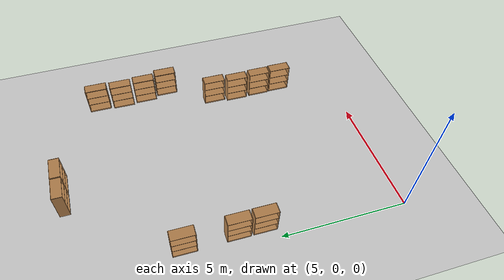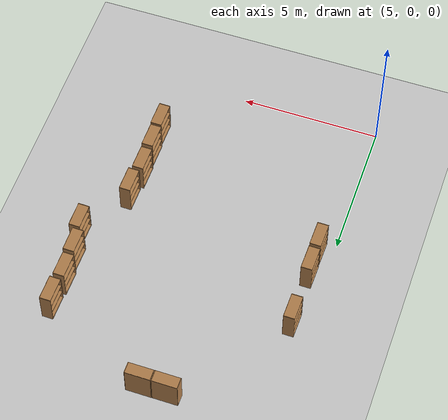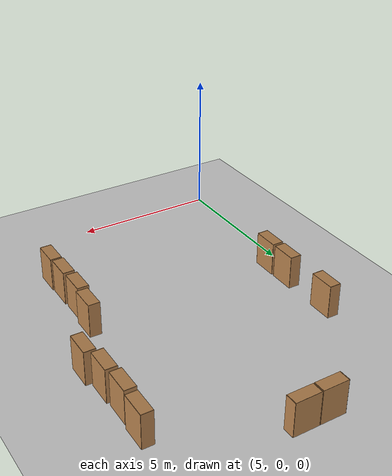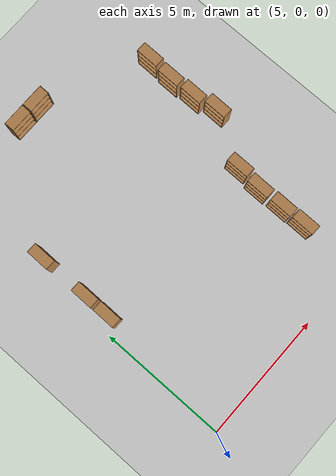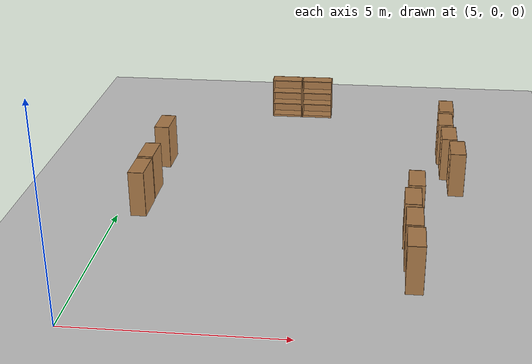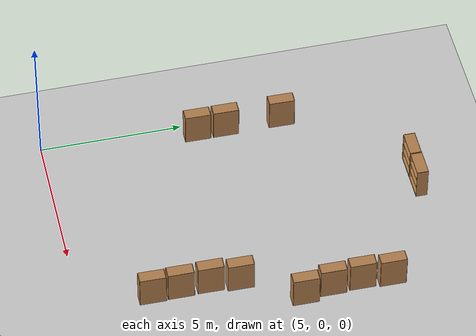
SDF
<sdf version="1.6">
 <world name="default">
  <model name="ground_plane">
   <static>1</static>
   <link name="link">
    <collision name="collision">
     <geometry><plane><normal>0 0 1</normal><size>100 100</size></plane></geometry>
     <surface>
      <contact><collide_bitmask>65535</collide_bitmask></contact>
      <friction><ode><mu>100</mu><mu2>50</mu2></ode></friction>
     </surface>
    </collision>
    <visual name="visual">
     <cast_shadows>0</cast_shadows>
     <geometry><plane><normal>0 0 1</normal><size>100 100</size></plane></geometry>
     <material>
      <script><uri>file://media/materials/scripts/gazebo.material</uri><name>Gazebo/Grey</name></script>
     </material>
    </visual>
   </link>
  </model>
  <model name="30x30env"><static>0</static><pose>32.1206 3.39752 0 0 -0 0</pose></model>
  <model name="bookshelf_clone_clone_clone_0_clone_clone">
   <static>1</static>
   <link name="link">
    <inertial><mass>1</mass></inertial>
    <collision name="back">
     <pose>0 0.005 0.6 0 -0 0</pose>
     <geometry><box><size>0.9 0.01 1.2</size></box></geometry>
    </collision>
    <visual name="visual1">
     <pose>0 0.005 0.6 0 -0 0</pose>
     <geometry><box><size>0.9 0.01 1.2</size></box></geometry>
     <material>
      <script><uri>file://media/materials/scripts/gazebo.material</uri><name>Gazebo/Wood</name></script>
     </material>
    </visual>
    <collision name="left_side">
     <pose>0.45 -0.195 0.6 0 -0 0</pose>
     <geometry><box><size>0.02 0.4 1.2</size></box></geometry>
    </collision>
    <visual name="visual2">
     <pose>0.45 -0.195 0.6 0 -0 0</pose>
     <geometry><box><size>0.02 0.4 1.2</size></box></geometry>
     <material>
      <script><uri>file://media/materials/scripts/gazebo.material</uri><name>Gazebo/Wood</name></script>
     </material>
    </visual>
    <collision name="right_side">
     <pose>-0.45 -0.195 0.6 0 -0 0</pose>
     <geometry><box><size>0.02 0.4 1.2</size></box></geometry>
    </collision>
    <visual name="visual3">
     <pose>-0.45 -0.195 0.6 0 -0 0</pose>
     <geometry><box><size>0.02 0.4 1.2</size></box></geometry>
     <material>
      <script><uri>file://media/materials/scripts/gazebo.material</uri><name>Gazebo/Wood</name></script>
     </material>
    </visual>
    <collision name="bottom">
     <pose>0 -0.195 0.03 0 -0 0</pose>
     <geometry><box><size>0.88 0.4 0.06</size></box></geometry>
    </collision>
    <visual name="visual4">
     <pose>0 -0.195 0.03 0 -0 0</pose>
     <geometry><box><size>0.88 0.4 0.06</size></box></geometry>
     <material>
      <script><uri>file://media/materials/scripts/gazebo.material</uri><name>Gazebo/Wood</name></script>
     </material>
    </visual>
    <collision name="top">
     <pose>0 -0.195 1.19 0 -0 0</pose>
     <geometry><box><size>0.88 0.4 0.02</size></box></geometry>
    </collision>
    <visual name="visual5">
     <pose>0 -0.195 1.19 0 -0 0</pose>
     <geometry><box><size>0.88 0.4 0.02</size></box></geometry>
     <material>
      <script><uri>file://media/materials/scripts/gazebo.material</uri><name>Gazebo/Wood</name></script>
     </material>
    </visual>
    <collision name="low_shelf">
     <pose>0 -0.195 0.43 0 -0 0</pose>
     <geometry><box><size>0.88 0.4 0.02</size></box></geometry>
    </collision>
    <visual name="visual6">
     <pose>0 -0.195 0.43 0 -0 0</pose>
     <geometry><box><size>0.88 0.4 0.02</size></box></geometry>
     <material>
      <script><uri>file://media/materials/scripts/gazebo.material</uri><name>Gazebo/Wood</name></script>
     </material>
    </visual>
    <collision name="high_shelf">
     <pose>0 -0.195 0.8 0 -0 0</pose>
     <geometry><box><size>0.88 0.4 0.02</size></box></geometry>
    </collision>
    <visual name="visual7">
     <pose>0 -0.195 0.8 0 -0 0</pose>
     <geometry><box><size>0.88 0.4 0.02</size></box></geometry>
     <material>
      <script><uri>file://media/materials/scripts/gazebo.material</uri><name>Gazebo/Wood</name></script>
     </material>
    </visual>
   </link>
   <pose>8.60542 12.6452 0 0 -0 0</pose>
  </model>
  <model name="bookshelf_clone_clone_clone_0_clone_clone_0">
   <static>1</static>
   <link name="link">
    <inertial><mass>1</mass></inertial>
    <collision name="back">
     <pose>0 0.005 0.6 0 -0 0</pose>
     <geometry><box><size>0.9 0.01 1.2</size></box></geometry>
    </collision>
    <visual name="visual1">
     <pose>0 0.005 0.6 0 -0 0</pose>
     <geometry><box><size>0.9 0.01 1.2</size></box></geometry>
     <material>
      <script><uri>file://media/materials/scripts/gazebo.material</uri><name>Gazebo/Wood</name></script>
     </material>
    </visual>
    <collision name="left_side">
     <pose>0.45 -0.195 0.6 0 -0 0</pose>
     <geometry><box><size>0.02 0.4 1.2</size></box></geometry>
    </collision>
    <visual name="visual2">
     <pose>0.45 -0.195 0.6 0 -0 0</pose>
     <geometry><box><size>0.02 0.4 1.2</size></box></geometry>
     <material>
      <script><uri>file://media/materials/scripts/gazebo.material</uri><name>Gazebo/Wood</name></script>
     </material>
    </visual>
    <collision name="right_side">
     <pose>-0.45 -0.195 0.6 0 -0 0</pose>
     <geometry><box><size>0.02 0.4 1.2</size></box></geometry>
    </collision>
    <visual name="visual3">
     <pose>-0.45 -0.195 0.6 0 -0 0</pose>
     <geometry><box><size>0.02 0.4 1.2</size></box></geometry>
     <material>
      <script><uri>file://media/materials/scripts/gazebo.material</uri><name>Gazebo/Wood</name></script>
     </material>
    </visual>
    <collision name="bottom">
     <pose>0 -0.195 0.03 0 -0 0</pose>
     <geometry><box><size>0.88 0.4 0.06</size></box></geometry>
    </collision>
    <visual name="visual4">
     <pose>0 -0.195 0.03 0 -0 0</pose>
     <geometry><box><size>0.88 0.4 0.06</size></box></geometry>
     <material>
      <script><uri>file://media/materials/scripts/gazebo.material</uri><name>Gazebo/Wood</name></script>
     </material>
    </visual>
    <collision name="top">
     <pose>0 -0.195 1.19 0 -0 0</pose>
     <geometry><box><size>0.88 0.4 0.02</size></box></geometry>
    </collision>
    <visual name="visual5">
     <pose>0 -0.195 1.19 0 -0 0</pose>
     <geometry><box><size>0.88 0.4 0.02</size></box></geometry>
     <material>
      <script><uri>file://media/materials/scripts/gazebo.material</uri><name>Gazebo/Wood</name></script>
     </material>
    </visual>
    <collision name="low_shelf">
     <pose>0 -0.195 0.43 0 -0 0</pose>
     <geometry><box><size>0.88 0.4 0.02</size></box></geometry>
    </collision>
    <visual name="visual6">
     <pose>0 -0.195 0.43 0 -0 0</pose>
     <geometry><box><size>0.88 0.4 0.02</size></box></geometry>
     <material>
      <script><uri>file://media/materials/scripts/gazebo.material</uri><name>Gazebo/Wood</name></script>
     </material>
    </visual>
    <collision name="high_shelf">
     <pose>0 -0.195 0.8 0 -0 0</pose>
     <geometry><box><size>0.88 0.4 0.02</size></box></geometry>
    </collision>
    <visual name="visual7">
     <pose>0 -0.195 0.8 0 -0 0</pose>
     <geometry><box><size>0.88 0.4 0.02</size></box></geometry>
     <material>
      <script><uri>file://media/materials/scripts/gazebo.material</uri><name>Gazebo/Wood</name></script>
     </material>
    </visual>
   </link>
   <pose>9.53734 12.6485 0 0 -0 0</pose>
  </model>
  <model name="bookshelf_clone_0_clone_clone_2_clone_2_clone">
   <static>1</static>
   <link name="link">
    <inertial><mass>1</mass></inertial>
    <collision name="back">
     <pose>0 0.005 0.6 0 -0 0</pose>
     <geometry><box><size>0.9 0.01 1.2</size></box></geometry>
    </collision>
    <visual name="visual1">
     <pose>0 0.005 0.6 0 -0 0</pose>
     <geometry><box><size>0.9 0.01 1.2</size></box></geometry>
     <material>
      <script><uri>file://media/materials/scripts/gazebo.material</uri><name>Gazebo/Wood</name></script>
     </material>
    </visual>
    <collision name="left_side">
     <pose>0.45 -0.195 0.6 0 -0 0</pose>
     <geometry><box><size>0.02 0.4 1.2</size></box></geometry>
    </collision>
    <visual name="visual2">
     <pose>0.45 -0.195 0.6 0 -0 0</pose>
     <geometry><box><size>0.02 0.4 1.2</size></box></geometry>
     <material>
      <script><uri>file://media/materials/scripts/gazebo.material</uri><name>Gazebo/Wood</name></script>
     </material>
    </visual>
    <collision name="right_side">
     <pose>-0.45 -0.195 0.6 0 -0 0</pose>
     <geometry><box><size>0.02 0.4 1.2</size></box></geometry>
    </collision>
    <visual name="visual3">
     <pose>-0.45 -0.195 0.6 0 -0 0</pose>
     <geometry><box><size>0.02 0.4 1.2</size></box></geometry>
     <material>
      <script><uri>file://media/materials/scripts/gazebo.material</uri><name>Gazebo/Wood</name></script>
     </material>
    </visual>
    <collision name="bottom">
     <pose>0 -0.195 0.03 0 -0 0</pose>
     <geometry><box><size>0.88 0.4 0.06</size></box></geometry>
    </collision>
    <visual name="visual4">
     <pose>0 -0.195 0.03 0 -0 0</pose>
     <geometry><box><size>0.88 0.4 0.06</size></box></geometry>
     <material>
      <script><uri>file://media/materials/scripts/gazebo.material</uri><name>Gazebo/Wood</name></script>
     </material>
    </visual>
    <collision name="top">
     <pose>0 -0.195 1.19 0 -0 0</pose>
     <geometry><box><size>0.88 0.4 0.02</size></box></geometry>
    </collision>
    <visual name="visual5">
     <pose>0 -0.195 1.19 0 -0 0</pose>
     <geometry><box><size>0.88 0.4 0.02</size></box></geometry>
     <material>
      <script><uri>file://media/materials/scripts/gazebo.material</uri><name>Gazebo/Wood</name></script>
     </material>
    </visual>
    <collision name="low_shelf">
     <pose>0 -0.195 0.43 0 -0 0</pose>
     <geometry><box><size>0.88 0.4 0.02</size></box></geometry>
    </collision>
    <visual name="visual6">
     <pose>0 -0.195 0.43 0 -0 0</pose>
     <geometry><box><size>0.88 0.4 0.02</size></box></geometry>
     <material>
      <script><uri>file://media/materials/scripts/gazebo.material</uri><name>Gazebo/Wood</name></script>
     </material>
    </visual>
    <collision name="high_shelf">
     <pose>0 -0.195 0.8 0 -0 0</pose>
     <geometry><box><size>0.88 0.4 0.02</size></box></geometry>
    </collision>
    <visual name="visual7">
     <pose>0 -0.195 0.8 0 -0 0</pose>
     <geometry><box><size>0.88 0.4 0.02</size></box></geometry>
     <material>
      <script><uri>file://media/materials/scripts/gazebo.material</uri><name>Gazebo/Wood</name></script>
     </material>
    </visual>
   </link>
   <pose>12.7076 5.4426 0 0 0 -1.58271</pose>
  </model>
  <model name="bookshelf_clone_0_clone_clone_2_clone_2_clone_0">
   <static>1</static>
   <link name="link">
    <inertial><mass>1</mass></inertial>
    <collision name="back">
     <pose>0 0.005 0.6 0 -0 0</pose>
     <geometry><box><size>0.9 0.01 1.2</size></box></geometry>
    </collision>
    <visual name="visual1">
     <pose>0 0.005 0.6 0 -0 0</pose>
     <geometry><box><size>0.9 0.01 1.2</size></box></geometry>
     <material>
      <script><uri>file://media/materials/scripts/gazebo.material</uri><name>Gazebo/Wood</name></script>
     </material>
    </visual>
    <collision name="left_side">
     <pose>0.45 -0.195 0.6 0 -0 0</pose>
     <geometry><box><size>0.02 0.4 1.2</size></box></geometry>
    </collision>
    <visual name="visual2">
     <pose>0.45 -0.195 0.6 0 -0 0</pose>
     <geometry><box><size>0.02 0.4 1.2</size></box></geometry>
     <material>
      <script><uri>file://media/materials/scripts/gazebo.material</uri><name>Gazebo/Wood</name></script>
     </material>
    </visual>
    <collision name="right_side">
     <pose>-0.45 -0.195 0.6 0 -0 0</pose>
     <geometry><box><size>0.02 0.4 1.2</size></box></geometry>
    </collision>
    <visual name="visual3">
     <pose>-0.45 -0.195 0.6 0 -0 0</pose>
     <geometry><box><size>0.02 0.4 1.2</size></box></geometry>
     <material>
      <script><uri>file://media/materials/scripts/gazebo.material</uri><name>Gazebo/Wood</name></script>
     </material>
    </visual>
    <collision name="bottom">
     <pose>0 -0.195 0.03 0 -0 0</pose>
     <geometry><box><size>0.88 0.4 0.06</size></box></geometry>
    </collision>
    <visual name="visual4">
     <pose>0 -0.195 0.03 0 -0 0</pose>
     <geometry><box><size>0.88 0.4 0.06</size></box></geometry>
     <material>
      <script><uri>file://media/materials/scripts/gazebo.material</uri><name>Gazebo/Wood</name></script>
     </material>
    </visual>
    <collision name="top">
     <pose>0 -0.195 1.19 0 -0 0</pose>
     <geometry><box><size>0.88 0.4 0.02</size></box></geometry>
    </collision>
    <visual name="visual5">
     <pose>0 -0.195 1.19 0 -0 0</pose>
     <geometry><box><size>0.88 0.4 0.02</size></box></geometry>
     <material>
      <script><uri>file://media/materials/scripts/gazebo.material</uri><name>Gazebo/Wood</name></script>
     </material>
    </visual>
    <collision name="low_shelf">
     <pose>0 -0.195 0.43 0 -0 0</pose>
     <geometry><box><size>0.88 0.4 0.02</size></box></geometry>
    </collision>
    <visual name="visual6">
     <pose>0 -0.195 0.43 0 -0 0</pose>
     <geometry><box><size>0.88 0.4 0.02</size></box></geometry>
     <material>
      <script><uri>file://media/materials/scripts/gazebo.material</uri><name>Gazebo/Wood</name></script>
     </material>
    </visual>
    <collision name="high_shelf">
     <pose>0 -0.195 0.8 0 -0 0</pose>
     <geometry><box><size>0.88 0.4 0.02</size></box></geometry>
    </collision>
    <visual name="visual7">
     <pose>0 -0.195 0.8 0 -0 0</pose>
     <geometry><box><size>0.88 0.4 0.02</size></box></geometry>
     <material>
      <script><uri>file://media/materials/scripts/gazebo.material</uri><name>Gazebo/Wood</name></script>
     </material>
    </visual>
   </link>
   <pose>12.6023 4.43091 0 0 0 -1.58271</pose>
  </model>
  <model name="bookshelf_clone_0_clone_clone_2_clone_2_clone_1">
   <static>1</static>
   <link name="link">
    <inertial><mass>1</mass></inertial>
    <collision name="back">
     <pose>0 0.005 0.6 0 -0 0</pose>
     <geometry><box><size>0.9 0.01 1.2</size></box></geometry>
    </collision>
    <visual name="visual1">
     <pose>0 0.005 0.6 0 -0 0</pose>
     <geometry><box><size>0.9 0.01 1.2</size></box></geometry>
     <material>
      <script><uri>file://media/materials/scripts/gazebo.material</uri><name>Gazebo/Wood</name></script>
     </material>
    </visual>
    <collision name="left_side">
     <pose>0.45 -0.195 0.6 0 -0 0</pose>
     <geometry><box><size>0.02 0.4 1.2</size></box></geometry>
    </collision>
    <visual name="visual2">
     <pose>0.45 -0.195 0.6 0 -0 0</pose>
     <geometry><box><size>0.02 0.4 1.2</size></box></geometry>
     <material>
      <script><uri>file://media/materials/scripts/gazebo.material</uri><name>Gazebo/Wood</name></script>
     </material>
    </visual>
    <collision name="right_side">
     <pose>-0.45 -0.195 0.6 0 -0 0</pose>
     <geometry><box><size>0.02 0.4 1.2</size></box></geometry>
    </collision>
    <visual name="visual3">
     <pose>-0.45 -0.195 0.6 0 -0 0</pose>
     <geometry><box><size>0.02 0.4 1.2</size></box></geometry>
     <material>
      <script><uri>file://media/materials/scripts/gazebo.material</uri><name>Gazebo/Wood</name></script>
     </material>
    </visual>
    <collision name="bottom">
     <pose>0 -0.195 0.03 0 -0 0</pose>
     <geometry><box><size>0.88 0.4 0.06</size></box></geometry>
    </collision>
    <visual name="visual4">
     <pose>0 -0.195 0.03 0 -0 0</pose>
     <geometry><box><size>0.88 0.4 0.06</size></box></geometry>
     <material>
      <script><uri>file://media/materials/scripts/gazebo.material</uri><name>Gazebo/Wood</name></script>
     </material>
    </visual>
    <collision name="top">
     <pose>0 -0.195 1.19 0 -0 0</pose>
     <geometry><box><size>0.88 0.4 0.02</size></box></geometry>
    </collision>
    <visual name="visual5">
     <pose>0 -0.195 1.19 0 -0 0</pose>
     <geometry><box><size>0.88 0.4 0.02</size></box></geometry>
     <material>
      <script><uri>file://media/materials/scripts/gazebo.material</uri><name>Gazebo/Wood</name></script>
     </material>
    </visual>
    <collision name="low_shelf">
     <pose>0 -0.195 0.43 0 -0 0</pose>
     <geometry><box><size>0.88 0.4 0.02</size></box></geometry>
    </collision>
    <visual name="visual6">
     <pose>0 -0.195 0.43 0 -0 0</pose>
     <geometry><box><size>0.88 0.4 0.02</size></box></geometry>
     <material>
      <script><uri>file://media/materials/scripts/gazebo.material</uri><name>Gazebo/Wood</name></script>
     </material>
    </visual>
    <collision name="high_shelf">
     <pose>0 -0.195 0.8 0 -0 0</pose>
     <geometry><box><size>0.88 0.4 0.02</size></box></geometry>
    </collision>
    <visual name="visual7">
     <pose>0 -0.195 0.8 0 -0 0</pose>
     <geometry><box><size>0.88 0.4 0.02</size></box></geometry>
     <material>
      <script><uri>file://media/materials/scripts/gazebo.material</uri><name>Gazebo/Wood</name></script>
     </material>
    </visual>
   </link>
   <pose>12.6233 3.39808 0 0 0 -1.58271</pose>
  </model>
  <model name="bookshelf_clone_0_clone_clone_2_clone_2_clone_2">
   <static>1</static>
   <link name="link">
    <inertial><mass>1</mass></inertial>
    <collision name="back">
     <pose>0 0.005 0.6 0 -0 0</pose>
     <geometry><box><size>0.9 0.01 1.2</size></box></geometry>
    </collision>
    <visual name="visual1">
     <pose>0 0.005 0.6 0 -0 0</pose>
     <geometry><box><size>0.9 0.01 1.2</size></box></geometry>
     <material>
      <script><uri>file://media/materials/scripts/gazebo.material</uri><name>Gazebo/Wood</name></script>
     </material>
    </visual>
    <collision name="left_side">
     <pose>0.45 -0.195 0.6 0 -0 0</pose>
     <geometry><box><size>0.02 0.4 1.2</size></box></geometry>
    </collision>
    <visual name="visual2">
     <pose>0.45 -0.195 0.6 0 -0 0</pose>
     <geometry><box><size>0.02 0.4 1.2</size></box></geometry>
     <material>
      <script><uri>file://media/materials/scripts/gazebo.material</uri><name>Gazebo/Wood</name></script>
     </material>
    </visual>
    <collision name="right_side">
     <pose>-0.45 -0.195 0.6 0 -0 0</pose>
     <geometry><box><size>0.02 0.4 1.2</size></box></geometry>
    </collision>
    <visual name="visual3">
     <pose>-0.45 -0.195 0.6 0 -0 0</pose>
     <geometry><box><size>0.02 0.4 1.2</size></box></geometry>
     <material>
      <script><uri>file://media/materials/scripts/gazebo.material</uri><name>Gazebo/Wood</name></script>
     </material>
    </visual>
    <collision name="bottom">
     <pose>0 -0.195 0.03 0 -0 0</pose>
     <geometry><box><size>0.88 0.4 0.06</size></box></geometry>
    </collision>
    <visual name="visual4">
     <pose>0 -0.195 0.03 0 -0 0</pose>
     <geometry><box><size>0.88 0.4 0.06</size></box></geometry>
     <material>
      <script><uri>file://media/materials/scripts/gazebo.material</uri><name>Gazebo/Wood</name></script>
     </material>
    </visual>
    <collision name="top">
     <pose>0 -0.195 1.19 0 -0 0</pose>
     <geometry><box><size>0.88 0.4 0.02</size></box></geometry>
    </collision>
    <visual name="visual5">
     <pose>0 -0.195 1.19 0 -0 0</pose>
     <geometry><box><size>0.88 0.4 0.02</size></box></geometry>
     <material>
      <script><uri>file://media/materials/scripts/gazebo.material</uri><name>Gazebo/Wood</name></script>
     </material>
    </visual>
    <collision name="low_shelf">
     <pose>0 -0.195 0.43 0 -0 0</pose>
     <geometry><box><size>0.88 0.4 0.02</size></box></geometry>
    </collision>
    <visual name="visual6">
     <pose>0 -0.195 0.43 0 -0 0</pose>
     <geometry><box><size>0.88 0.4 0.02</size></box></geometry>
     <material>
      <script><uri>file://media/materials/scripts/gazebo.material</uri><name>Gazebo/Wood</name></script>
     </material>
    </visual>
    <collision name="high_shelf">
     <pose>0 -0.195 0.8 0 -0 0</pose>
     <geometry><box><size>0.88 0.4 0.02</size></box></geometry>
    </collision>
    <visual name="visual7">
     <pose>0 -0.195 0.8 0 -0 0</pose>
     <geometry><box><size>0.88 0.4 0.02</size></box></geometry>
     <material>
      <script><uri>file://media/materials/scripts/gazebo.material</uri><name>Gazebo/Wood</name></script>
     </material>
    </visual>
   </link>
   <pose>12.6443 2.42867 0 0 0 -1.58271</pose>
  </model>
  <model name="bookshelf_clone_0_clone_clone_2_clone_2_clone_3">
   <static>1</static>
   <link name="link">
    <inertial><mass>1</mass></inertial>
    <collision name="back">
     <pose>0 0.005 0.6 0 -0 0</pose>
     <geometry><box><size>0.9 0.01 1.2</size></box></geometry>
    </collision>
    <visual name="visual1">
     <pose>0 0.005 0.6 0 -0 0</pose>
     <geometry><box><size>0.9 0.01 1.2</size></box></geometry>
     <material>
      <script><uri>file://media/materials/scripts/gazebo.material</uri><name>Gazebo/Wood</name></script>
     </material>
    </visual>
    <collision name="left_side">
     <pose>0.45 -0.195 0.6 0 -0 0</pose>
     <geometry><box><size>0.02 0.4 1.2</size></box></geometry>
    </collision>
    <visual name="visual2">
     <pose>0.45 -0.195 0.6 0 -0 0</pose>
     <geometry><box><size>0.02 0.4 1.2</size></box></geometry>
     <material>
      <script><uri>file://media/materials/scripts/gazebo.material</uri><name>Gazebo/Wood</name></script>
     </material>
    </visual>
    <collision name="right_side">
     <pose>-0.45 -0.195 0.6 0 -0 0</pose>
     <geometry><box><size>0.02 0.4 1.2</size></box></geometry>
    </collision>
    <visual name="visual3">
     <pose>-0.45 -0.195 0.6 0 -0 0</pose>
     <geometry><box><size>0.02 0.4 1.2</size></box></geometry>
     <material>
      <script><uri>file://media/materials/scripts/gazebo.material</uri><name>Gazebo/Wood</name></script>
     </material>
    </visual>
    <collision name="bottom">
     <pose>0 -0.195 0.03 0 -0 0</pose>
     <geometry><box><size>0.88 0.4 0.06</size></box></geometry>
    </collision>
    <visual name="visual4">
     <pose>0 -0.195 0.03 0 -0 0</pose>
     <geometry><box><size>0.88 0.4 0.06</size></box></geometry>
     <material>
      <script><uri>file://media/materials/scripts/gazebo.material</uri><name>Gazebo/Wood</name></script>
     </material>
    </visual>
    <collision name="top">
     <pose>0 -0.195 1.19 0 -0 0</pose>
     <geometry><box><size>0.88 0.4 0.02</size></box></geometry>
    </collision>
    <visual name="visual5">
     <pose>0 -0.195 1.19 0 -0 0</pose>
     <geometry><box><size>0.88 0.4 0.02</size></box></geometry>
     <material>
      <script><uri>file://media/materials/scripts/gazebo.material</uri><name>Gazebo/Wood</name></script>
     </material>
    </visual>
    <collision name="low_shelf">
     <pose>0 -0.195 0.43 0 -0 0</pose>
     <geometry><box><size>0.88 0.4 0.02</size></box></geometry>
    </collision>
    <visual name="visual6">
     <pose>0 -0.195 0.43 0 -0 0</pose>
     <geometry><box><size>0.88 0.4 0.02</size></box></geometry>
     <material>
      <script><uri>file://media/materials/scripts/gazebo.material</uri><name>Gazebo/Wood</name></script>
     </material>
    </visual>
    <collision name="high_shelf">
     <pose>0 -0.195 0.8 0 -0 0</pose>
     <geometry><box><size>0.88 0.4 0.02</size></box></geometry>
    </collision>
    <visual name="visual7">
     <pose>0 -0.195 0.8 0 -0 0</pose>
     <geometry><box><size>0.88 0.4 0.02</size></box></geometry>
     <material>
      <script><uri>file://media/materials/scripts/gazebo.material</uri><name>Gazebo/Wood</name></script>
     </material>
    </visual>
   </link>
   <pose>13.6476 10.4832 0 0 0 -1.58271</pose>
  </model>
  <model name="bookshelf_clone_0_clone_clone_2_clone_2_clone_4">
   <static>1</static>
   <link name="link">
    <inertial><mass>1</mass></inertial>
    <collision name="back">
     <pose>0 0.005 0.6 0 -0 0</pose>
     <geometry><box><size>0.9 0.01 1.2</size></box></geometry>
    </collision>
    <visual name="visual1">
     <pose>0 0.005 0.6 0 -0 0</pose>
     <geometry><box><size>0.9 0.01 1.2</size></box></geometry>
     <material>
      <script><uri>file://media/materials/scripts/gazebo.material</uri><name>Gazebo/Wood</name></script>
     </material>
    </visual>
    <collision name="left_side">
     <pose>0.45 -0.195 0.6 0 -0 0</pose>
     <geometry><box><size>0.02 0.4 1.2</size></box></geometry>
    </collision>
    <visual name="visual2">
     <pose>0.45 -0.195 0.6 0 -0 0</pose>
     <geometry><box><size>0.02 0.4 1.2</size></box></geometry>
     <material>
      <script><uri>file://media/materials/scripts/gazebo.material</uri><name>Gazebo/Wood</name></script>
     </material>
    </visual>
    <collision name="right_side">
     <pose>-0.45 -0.195 0.6 0 -0 0</pose>
     <geometry><box><size>0.02 0.4 1.2</size></box></geometry>
    </collision>
    <visual name="visual3">
     <pose>-0.45 -0.195 0.6 0 -0 0</pose>
     <geometry><box><size>0.02 0.4 1.2</size></box></geometry>
     <material>
      <script><uri>file://media/materials/scripts/gazebo.material</uri><name>Gazebo/Wood</name></script>
     </material>
    </visual>
    <collision name="bottom">
     <pose>0 -0.195 0.03 0 -0 0</pose>
     <geometry><box><size>0.88 0.4 0.06</size></box></geometry>
    </collision>
    <visual name="visual4">
     <pose>0 -0.195 0.03 0 -0 0</pose>
     <geometry><box><size>0.88 0.4 0.06</size></box></geometry>
     <material>
      <script><uri>file://media/materials/scripts/gazebo.material</uri><name>Gazebo/Wood</name></script>
     </material>
    </visual>
    <collision name="top">
     <pose>0 -0.195 1.19 0 -0 0</pose>
     <geometry><box><size>0.88 0.4 0.02</size></box></geometry>
    </collision>
    <visual name="visual5">
     <pose>0 -0.195 1.19 0 -0 0</pose>
     <geometry><box><size>0.88 0.4 0.02</size></box></geometry>
     <material>
      <script><uri>file://media/materials/scripts/gazebo.material</uri><name>Gazebo/Wood</name></script>
     </material>
    </visual>
    <collision name="low_shelf">
     <pose>0 -0.195 0.43 0 -0 0</pose>
     <geometry><box><size>0.88 0.4 0.02</size></box></geometry>
    </collision>
    <visual name="visual6">
     <pose>0 -0.195 0.43 0 -0 0</pose>
     <geometry><box><size>0.88 0.4 0.02</size></box></geometry>
     <material>
      <script><uri>file://media/materials/scripts/gazebo.material</uri><name>Gazebo/Wood</name></script>
     </material>
    </visual>
    <collision name="high_shelf">
     <pose>0 -0.195 0.8 0 -0 0</pose>
     <geometry><box><size>0.88 0.4 0.02</size></box></geometry>
    </collision>
    <visual name="visual7">
     <pose>0 -0.195 0.8 0 -0 0</pose>
     <geometry><box><size>0.88 0.4 0.02</size></box></geometry>
     <material>
      <script><uri>file://media/materials/scripts/gazebo.material</uri><name>Gazebo/Wood</name></script>
     </material>
    </visual>
   </link>
   <pose>13.5826 9.44266 0 0 0 -1.58271</pose>
  </model>
  <model name="bookshelf_clone_0_clone_clone_2_clone_2_clone_5">
   <static>1</static>
   <link name="link">
    <inertial><mass>1</mass></inertial>
    <collision name="back">
     <pose>0 0.005 0.6 0 -0 0</pose>
     <geometry><box><size>0.9 0.01 1.2</size></box></geometry>
    </collision>
    <visual name="visual1">
     <pose>0 0.005 0.6 0 -0 0</pose>
     <geometry><box><size>0.9 0.01 1.2</size></box></geometry>
     <material>
      <script><uri>file://media/materials/scripts/gazebo.material</uri><name>Gazebo/Wood</name></script>
     </material>
    </visual>
    <collision name="left_side">
     <pose>0.45 -0.195 0.6 0 -0 0</pose>
     <geometry><box><size>0.02 0.4 1.2</size></box></geometry>
    </collision>
    <visual name="visual2">
     <pose>0.45 -0.195 0.6 0 -0 0</pose>
     <geometry><box><size>0.02 0.4 1.2</size></box></geometry>
     <material>
      <script><uri>file://media/materials/scripts/gazebo.material</uri><name>Gazebo/Wood</name></script>
     </material>
    </visual>
    <collision name="right_side">
     <pose>-0.45 -0.195 0.6 0 -0 0</pose>
     <geometry><box><size>0.02 0.4 1.2</size></box></geometry>
    </collision>
    <visual name="visual3">
     <pose>-0.45 -0.195 0.6 0 -0 0</pose>
     <geometry><box><size>0.02 0.4 1.2</size></box></geometry>
     <material>
      <script><uri>file://media/materials/scripts/gazebo.material</uri><name>Gazebo/Wood</name></script>
     </material>
    </visual>
    <collision name="bottom">
     <pose>0 -0.195 0.03 0 -0 0</pose>
     <geometry><box><size>0.88 0.4 0.06</size></box></geometry>
    </collision>
    <visual name="visual4">
     <pose>0 -0.195 0.03 0 -0 0</pose>
     <geometry><box><size>0.88 0.4 0.06</size></box></geometry>
     <material>
      <script><uri>file://media/materials/scripts/gazebo.material</uri><name>Gazebo/Wood</name></script>
     </material>
    </visual>
    <collision name="top">
     <pose>0 -0.195 1.19 0 -0 0</pose>
     <geometry><box><size>0.88 0.4 0.02</size></box></geometry>
    </collision>
    <visual name="visual5">
     <pose>0 -0.195 1.19 0 -0 0</pose>
     <geometry><box><size>0.88 0.4 0.02</size></box></geometry>
     <material>
      <script><uri>file://media/materials/scripts/gazebo.material</uri><name>Gazebo/Wood</name></script>
     </material>
    </visual>
    <collision name="low_shelf">
     <pose>0 -0.195 0.43 0 -0 0</pose>
     <geometry><box><size>0.88 0.4 0.02</size></box></geometry>
    </collision>
    <visual name="visual6">
     <pose>0 -0.195 0.43 0 -0 0</pose>
     <geometry><box><size>0.88 0.4 0.02</size></box></geometry>
     <material>
      <script><uri>file://media/materials/scripts/gazebo.material</uri><name>Gazebo/Wood</name></script>
     </material>
    </visual>
    <collision name="high_shelf">
     <pose>0 -0.195 0.8 0 -0 0</pose>
     <geometry><box><size>0.88 0.4 0.02</size></box></geometry>
    </collision>
    <visual name="visual7">
     <pose>0 -0.195 0.8 0 -0 0</pose>
     <geometry><box><size>0.88 0.4 0.02</size></box></geometry>
     <material>
      <script><uri>file://media/materials/scripts/gazebo.material</uri><name>Gazebo/Wood</name></script>
     </material>
    </visual>
   </link>
   <pose>13.6312 8.41801 0 0 0 -1.58271</pose>
  </model>
  <model name="bookshelf_clone_0_clone_clone_2_clone_2_clone_6">
   <static>1</static>
   <link name="link">
    <inertial><mass>1</mass></inertial>
    <collision name="back">
     <pose>0 0.005 0.6 0 -0 0</pose>
     <geometry><box><size>0.9 0.01 1.2</size></box></geometry>
    </collision>
    <visual name="visual1">
     <pose>0 0.005 0.6 0 -0 0</pose>
     <geometry><box><size>0.9 0.01 1.2</size></box></geometry>
     <material>
      <script><uri>file://media/materials/scripts/gazebo.material</uri><name>Gazebo/Wood</name></script>
     </material>
    </visual>
    <collision name="left_side">
     <pose>0.45 -0.195 0.6 0 -0 0</pose>
     <geometry><box><size>0.02 0.4 1.2</size></box></geometry>
    </collision>
    <visual name="visual2">
     <pose>0.45 -0.195 0.6 0 -0 0</pose>
     <geometry><box><size>0.02 0.4 1.2</size></box></geometry>
     <material>
      <script><uri>file://media/materials/scripts/gazebo.material</uri><name>Gazebo/Wood</name></script>
     </material>
    </visual>
    <collision name="right_side">
     <pose>-0.45 -0.195 0.6 0 -0 0</pose>
     <geometry><box><size>0.02 0.4 1.2</size></box></geometry>
    </collision>
    <visual name="visual3">
     <pose>-0.45 -0.195 0.6 0 -0 0</pose>
     <geometry><box><size>0.02 0.4 1.2</size></box></geometry>
     <material>
      <script><uri>file://media/materials/scripts/gazebo.material</uri><name>Gazebo/Wood</name></script>
     </material>
    </visual>
    <collision name="bottom">
     <pose>0 -0.195 0.03 0 -0 0</pose>
     <geometry><box><size>0.88 0.4 0.06</size></box></geometry>
    </collision>
    <visual name="visual4">
     <pose>0 -0.195 0.03 0 -0 0</pose>
     <geometry><box><size>0.88 0.4 0.06</size></box></geometry>
     <material>
      <script><uri>file://media/materials/scripts/gazebo.material</uri><name>Gazebo/Wood</name></script>
     </material>
    </visual>
    <collision name="top">
     <pose>0 -0.195 1.19 0 -0 0</pose>
     <geometry><box><size>0.88 0.4 0.02</size></box></geometry>
    </collision>
    <visual name="visual5">
     <pose>0 -0.195 1.19 0 -0 0</pose>
     <geometry><box><size>0.88 0.4 0.02</size></box></geometry>
     <material>
      <script><uri>file://media/materials/scripts/gazebo.material</uri><name>Gazebo/Wood</name></script>
     </material>
    </visual>
    <collision name="low_shelf">
     <pose>0 -0.195 0.43 0 -0 0</pose>
     <geometry><box><size>0.88 0.4 0.02</size></box></geometry>
    </collision>
    <visual name="visual6">
     <pose>0 -0.195 0.43 0 -0 0</pose>
     <geometry><box><size>0.88 0.4 0.02</size></box></geometry>
     <material>
      <script><uri>file://media/materials/scripts/gazebo.material</uri><name>Gazebo/Wood</name></script>
     </material>
    </visual>
    <collision name="high_shelf">
     <pose>0 -0.195 0.8 0 -0 0</pose>
     <geometry><box><size>0.88 0.4 0.02</size></box></geometry>
    </collision>
    <visual name="visual7">
     <pose>0 -0.195 0.8 0 -0 0</pose>
     <geometry><box><size>0.88 0.4 0.02</size></box></geometry>
     <material>
      <script><uri>file://media/materials/scripts/gazebo.material</uri><name>Gazebo/Wood</name></script>
     </material>
    </visual>
   </link>
   <pose>13.8103 7.4262 0 0 0 -1.58271</pose>
  </model>
  <model name="bookshelf_clone_0_clone_clone_2_clone_2_clone_3_clone">
   <static>1</static>
   <link name="link">
    <inertial><mass>1</mass></inertial>
    <collision name="back">
     <pose>0 0.005 0.6 0 -0 0</pose>
     <geometry><box><size>0.9 0.01 1.2</size></box></geometry>
    </collision>
    <visual name="visual1">
     <pose>0 0.005 0.6 0 -0 0</pose>
     <geometry><box><size>0.9 0.01 1.2</size></box></geometry>
     <material>
      <script><uri>file://media/materials/scripts/gazebo.material</uri><name>Gazebo/Wood</name></script>
     </material>
    </visual>
    <collision name="left_side">
     <pose>0.45 -0.195 0.6 0 -0 0</pose>
     <geometry><box><size>0.02 0.4 1.2</size></box></geometry>
    </collision>
    <visual name="visual2">
     <pose>0.45 -0.195 0.6 0 -0 0</pose>
     <geometry><box><size>0.02 0.4 1.2</size></box></geometry>
     <material>
      <script><uri>file://media/materials/scripts/gazebo.material</uri><name>Gazebo/Wood</name></script>
     </material>
    </visual>
    <collision name="right_side">
     <pose>-0.45 -0.195 0.6 0 -0 0</pose>
     <geometry><box><size>0.02 0.4 1.2</size></box></geometry>
    </collision>
    <visual name="visual3">
     <pose>-0.45 -0.195 0.6 0 -0 0</pose>
     <geometry><box><size>0.02 0.4 1.2</size></box></geometry>
     <material>
      <script><uri>file://media/materials/scripts/gazebo.material</uri><name>Gazebo/Wood</name></script>
     </material>
    </visual>
    <collision name="bottom">
     <pose>0 -0.195 0.03 0 -0 0</pose>
     <geometry><box><size>0.88 0.4 0.06</size></box></geometry>
    </collision>
    <visual name="visual4">
     <pose>0 -0.195 0.03 0 -0 0</pose>
     <geometry><box><size>0.88 0.4 0.06</size></box></geometry>
     <material>
      <script><uri>file://media/materials/scripts/gazebo.material</uri><name>Gazebo/Wood</name></script>
     </material>
    </visual>
    <collision name="top">
     <pose>0 -0.195 1.19 0 -0 0</pose>
     <geometry><box><size>0.88 0.4 0.02</size></box></geometry>
    </collision>
    <visual name="visual5">
     <pose>0 -0.195 1.19 0 -0 0</pose>
     <geometry><box><size>0.88 0.4 0.02</size></box></geometry>
     <material>
      <script><uri>file://media/materials/scripts/gazebo.material</uri><name>Gazebo/Wood</name></script>
     </material>
    </visual>
    <collision name="low_shelf">
     <pose>0 -0.195 0.43 0 -0 0</pose>
     <geometry><box><size>0.88 0.4 0.02</size></box></geometry>
    </collision>
    <visual name="visual6">
     <pose>0 -0.195 0.43 0 -0 0</pose>
     <geometry><box><size>0.88 0.4 0.02</size></box></geometry>
     <material>
      <script><uri>file://media/materials/scripts/gazebo.material</uri><name>Gazebo/Wood</name></script>
     </material>
    </visual>
    <collision name="high_shelf">
     <pose>0 -0.195 0.8 0 -0 0</pose>
     <geometry><box><size>0.88 0.4 0.02</size></box></geometry>
    </collision>
    <visual name="visual7">
     <pose>0 -0.195 0.8 0 -0 0</pose>
     <geometry><box><size>0.88 0.4 0.02</size></box></geometry>
     <material>
      <script><uri>file://media/materials/scripts/gazebo.material</uri><name>Gazebo/Wood</name></script>
     </material>
    </visual>
   </link>
   <pose>5.72776 8.49869 0 0 0 -1.58271</pose>
  </model>
  <model name="bookshelf_clone_0_clone_clone_2_clone_2_clone_3_clone_1">
   <static>1</static>
   <link name="link">
    <inertial><mass>1</mass></inertial>
    <collision name="back">
     <pose>0 0.005 0.6 0 -0 0</pose>
     <geometry><box><size>0.9 0.01 1.2</size></box></geometry>
    </collision>
    <visual name="visual1">
     <pose>0 0.005 0.6 0 -0 0</pose>
     <geometry><box><size>0.9 0.01 1.2</size></box></geometry>
     <material>
      <script><uri>file://media/materials/scripts/gazebo.material</uri><name>Gazebo/Wood</name></script>
     </material>
    </visual>
    <collision name="left_side">
     <pose>0.45 -0.195 0.6 0 -0 0</pose>
     <geometry><box><size>0.02 0.4 1.2</size></box></geometry>
    </collision>
    <visual name="visual2">
     <pose>0.45 -0.195 0.6 0 -0 0</pose>
     <geometry><box><size>0.02 0.4 1.2</size></box></geometry>
     <material>
      <script><uri>file://media/materials/scripts/gazebo.material</uri><name>Gazebo/Wood</name></script>
     </material>
    </visual>
    <collision name="right_side">
     <pose>-0.45 -0.195 0.6 0 -0 0</pose>
     <geometry><box><size>0.02 0.4 1.2</size></box></geometry>
    </collision>
    <visual name="visual3">
     <pose>-0.45 -0.195 0.6 0 -0 0</pose>
     <geometry><box><size>0.02 0.4 1.2</size></box></geometry>
     <material>
      <script><uri>file://media/materials/scripts/gazebo.material</uri><name>Gazebo/Wood</name></script>
     </material>
    </visual>
    <collision name="bottom">
     <pose>0 -0.195 0.03 0 -0 0</pose>
     <geometry><box><size>0.88 0.4 0.06</size></box></geometry>
    </collision>
    <visual name="visual4">
     <pose>0 -0.195 0.03 0 -0 0</pose>
     <geometry><box><size>0.88 0.4 0.06</size></box></geometry>
     <material>
      <script><uri>file://media/materials/scripts/gazebo.material</uri><name>Gazebo/Wood</name></script>
     </material>
    </visual>
    <collision name="top">
     <pose>0 -0.195 1.19 0 -0 0</pose>
     <geometry><box><size>0.88 0.4 0.02</size></box></geometry>
    </collision>
    <visual name="visual5">
     <pose>0 -0.195 1.19 0 -0 0</pose>
     <geometry><box><size>0.88 0.4 0.02</size></box></geometry>
     <material>
      <script><uri>file://media/materials/scripts/gazebo.material</uri><name>Gazebo/Wood</name></script>
     </material>
    </visual>
    <collision name="low_shelf">
     <pose>0 -0.195 0.43 0 -0 0</pose>
     <geometry><box><size>0.88 0.4 0.02</size></box></geometry>
    </collision>
    <visual name="visual6">
     <pose>0 -0.195 0.43 0 -0 0</pose>
     <geometry><box><size>0.88 0.4 0.02</size></box></geometry>
     <material>
      <script><uri>file://media/materials/scripts/gazebo.material</uri><name>Gazebo/Wood</name></script>
     </material>
    </visual>
    <collision name="high_shelf">
     <pose>0 -0.195 0.8 0 -0 0</pose>
     <geometry><box><size>0.88 0.4 0.02</size></box></geometry>
    </collision>
    <visual name="visual7">
     <pose>0 -0.195 0.8 0 -0 0</pose>
     <geometry><box><size>0.88 0.4 0.02</size></box></geometry>
     <material>
      <script><uri>file://media/materials/scripts/gazebo.material</uri><name>Gazebo/Wood</name></script>
     </material>
    </visual>
   </link>
   <pose>5.74438 6.4858 0 0 0 -1.58271</pose>
  </model>
  <model name="bookshelf_clone_0_clone_clone_2_clone_2_clone_3_clone_2">
   <static>1</static>
   <link name="link">
    <inertial><mass>1</mass></inertial>
    <collision name="back">
     <pose>0 0.005 0.6 0 -0 0</pose>
     <geometry><box><size>0.9 0.01 1.2</size></box></geometry>
    </collision>
    <visual name="visual1">
     <pose>0 0.005 0.6 0 -0 0</pose>
     <geometry><box><size>0.9 0.01 1.2</size></box></geometry>
     <material>
      <script><uri>file://media/materials/scripts/gazebo.material</uri><name>Gazebo/Wood</name></script>
     </material>
    </visual>
    <collision name="left_side">
     <pose>0.45 -0.195 0.6 0 -0 0</pose>
     <geometry><box><size>0.02 0.4 1.2</size></box></geometry>
    </collision>
    <visual name="visual2">
     <pose>0.45 -0.195 0.6 0 -0 0</pose>
     <geometry><box><size>0.02 0.4 1.2</size></box></geometry>
     <material>
      <script><uri>file://media/materials/scripts/gazebo.material</uri><name>Gazebo/Wood</name></script>
     </material>
    </visual>
    <collision name="right_side">
     <pose>-0.45 -0.195 0.6 0 -0 0</pose>
     <geometry><box><size>0.02 0.4 1.2</size></box></geometry>
    </collision>
    <visual name="visual3">
     <pose>-0.45 -0.195 0.6 0 -0 0</pose>
     <geometry><box><size>0.02 0.4 1.2</size></box></geometry>
     <material>
      <script><uri>file://media/materials/scripts/gazebo.material</uri><name>Gazebo/Wood</name></script>
     </material>
    </visual>
    <collision name="bottom">
     <pose>0 -0.195 0.03 0 -0 0</pose>
     <geometry><box><size>0.88 0.4 0.06</size></box></geometry>
    </collision>
    <visual name="visual4">
     <pose>0 -0.195 0.03 0 -0 0</pose>
     <geometry><box><size>0.88 0.4 0.06</size></box></geometry>
     <material>
      <script><uri>file://media/materials/scripts/gazebo.material</uri><name>Gazebo/Wood</name></script>
     </material>
    </visual>
    <collision name="top">
     <pose>0 -0.195 1.19 0 -0 0</pose>
     <geometry><box><size>0.88 0.4 0.02</size></box></geometry>
    </collision>
    <visual name="visual5">
     <pose>0 -0.195 1.19 0 -0 0</pose>
     <geometry><box><size>0.88 0.4 0.02</size></box></geometry>
     <material>
      <script><uri>file://media/materials/scripts/gazebo.material</uri><name>Gazebo/Wood</name></script>
     </material>
    </visual>
    <collision name="low_shelf">
     <pose>0 -0.195 0.43 0 -0 0</pose>
     <geometry><box><size>0.88 0.4 0.02</size></box></geometry>
    </collision>
    <visual name="visual6">
     <pose>0 -0.195 0.43 0 -0 0</pose>
     <geometry><box><size>0.88 0.4 0.02</size></box></geometry>
     <material>
      <script><uri>file://media/materials/scripts/gazebo.material</uri><name>Gazebo/Wood</name></script>
     </material>
    </visual>
    <collision name="high_shelf">
     <pose>0 -0.195 0.8 0 -0 0</pose>
     <geometry><box><size>0.88 0.4 0.02</size></box></geometry>
    </collision>
    <visual name="visual7">
     <pose>0 -0.195 0.8 0 -0 0</pose>
     <geometry><box><size>0.88 0.4 0.02</size></box></geometry>
     <material>
      <script><uri>file://media/materials/scripts/gazebo.material</uri><name>Gazebo/Wood</name></script>
     </material>
    </visual>
   </link>
   <pose>5.74379 5.4839 0 0 0 -1.58271</pose>
  </model>
 </world>
</sdf>
